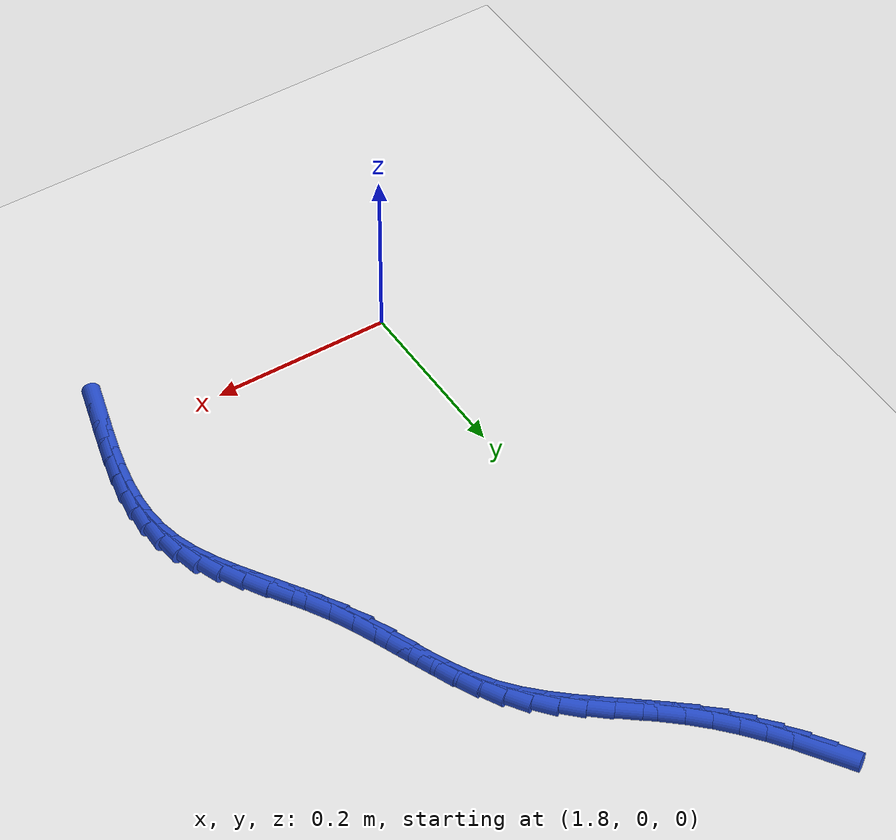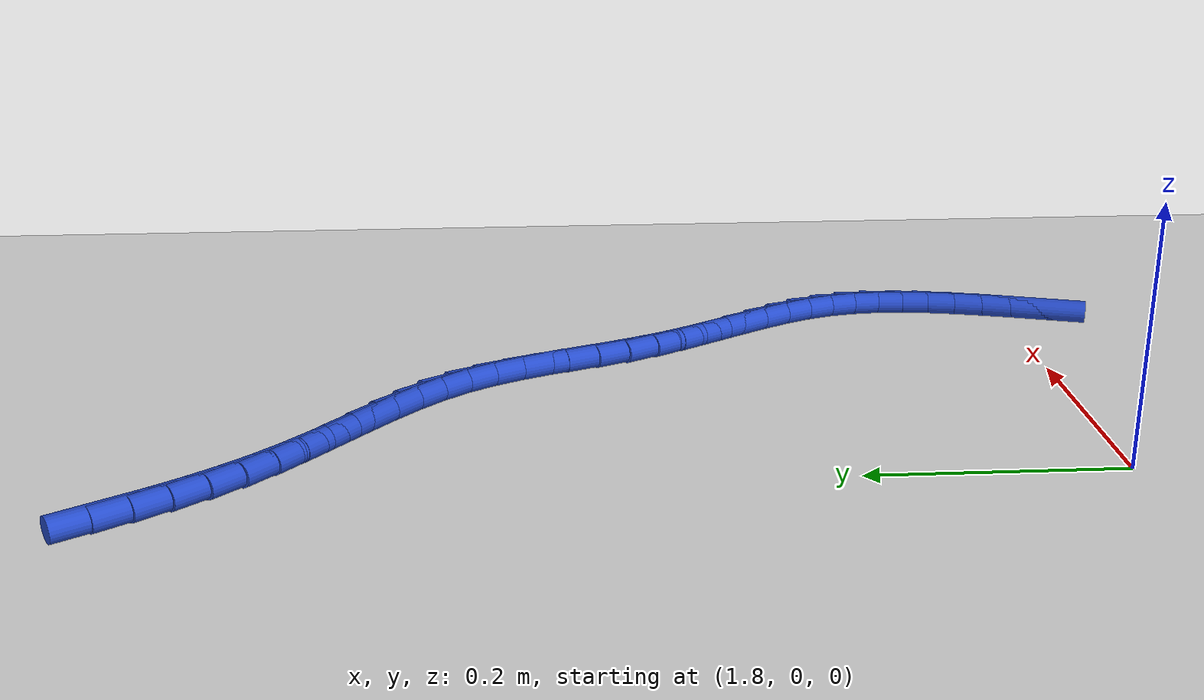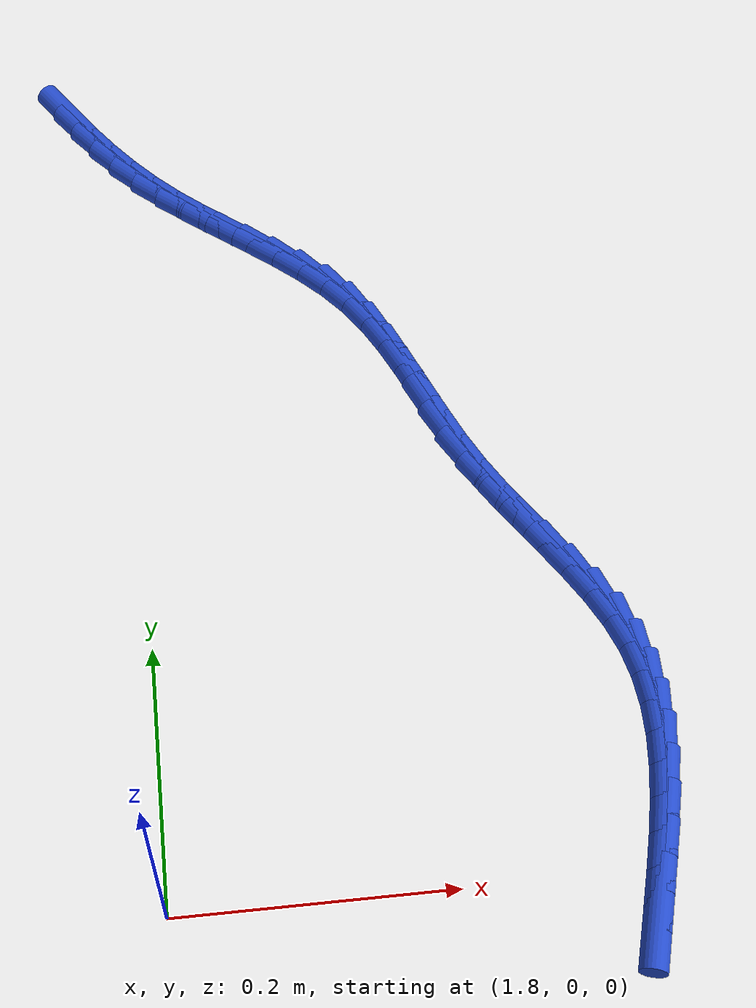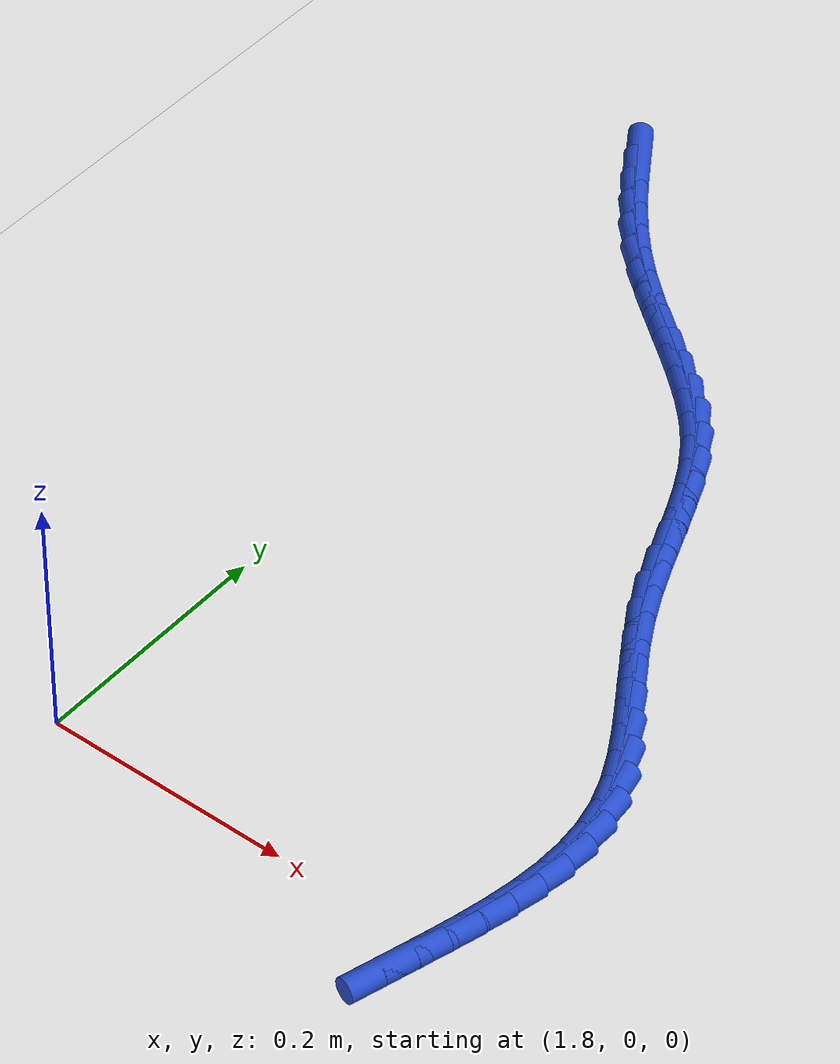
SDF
<sdf version="1.6">
 <world name="default">
  <model name="ground_plane">
   <static>1</static>
   <link name="link">
    <collision name="collision">
     <geometry><plane><normal>0 0 1</normal><size>100 100</size></plane></geometry>
     <surface><friction><ode><mu>100</mu><mu2>50</mu2></ode></friction></surface>
    </collision>
    <visual name="visual">
     <cast_shadows>0</cast_shadows>
     <geometry><plane><normal>0 0 1</normal><size>100 100</size></plane></geometry>
     <material>
      <script><uri>file://media/materials/scripts/gazebo.material</uri><name>Gazebo/WhiteGlow</name></script>
     </material>
    </visual>
   </link>
  </model>
  <model name="line">
   <link name="link_103">
    <pose>1.755227959122589 0.7230557136589938 0.01 0 1.57 -0.9894652515931217</pose>
    <collision name="collision">
     <geometry><cylinder><radius>0.01</radius><length>0.08</length></cylinder></geometry>
    </collision>
    <visual name="visual">
     <material>
      <script><name>Gazebo/Blue</name><uri>file://media/materials/scripts/gazebo.material</uri></script>
     </material>
     <geometry><cylinder><radius>0.01</radius><length>0.08</length></cylinder></geometry>
    </visual>
   </link>
   <link name="link_104">
    <pose>1.7700422547282626 0.7005098079702247 0.01 0 1.57 -0.9454566891592192</pose>
    <collision name="collision">
     <geometry><cylinder><radius>0.01</radius><length>0.08</length></cylinder></geometry>
    </collision>
    <visual name="visual">
     <material>
      <script><name>Gazebo/Blue</name><uri>file://media/materials/scripts/gazebo.material</uri></script>
     </material>
     <geometry><cylinder><radius>0.01</radius><length>0.08</length></cylinder></geometry>
    </visual>
   </link>
   <link name="link_105">
    <pose>1.7858175777164018 0.6786603604137122 0.01 0 1.57 -0.8946418188440194</pose>
    <collision name="collision">
     <geometry><cylinder><radius>0.01</radius><length>0.08</length></cylinder></geometry>
    </collision>
    <visual name="visual">
     <material>
      <script><name>Gazebo/Blue</name><uri>file://media/materials/scripts/gazebo.material</uri></script>
     </material>
     <geometry><cylinder><radius>0.01</radius><length>0.08</length></cylinder></geometry>
    </visual>
   </link>
   <link name="link_106">
    <pose>1.8026693780623755 0.6576565439930375 0.01 0 1.57 -0.8369986534516176</pose>
    <collision name="collision">
     <geometry><cylinder><radius>0.01</radius><length>0.08</length></cylinder></geometry>
    </collision>
    <visual name="visual">
     <material>
      <script><name>Gazebo/Blue</name><uri>file://media/materials/scripts/gazebo.material</uri></script>
     </material>
     <geometry><cylinder><radius>0.01</radius><length>0.08</length></cylinder></geometry>
    </visual>
   </link>
   <link name="link_107">
    <pose>1.8207131057415515 0.6376475317117806 0.01 0 1.57 -0.772832061545393</pose>
    <collision name="collision">
     <geometry><cylinder><radius>0.01</radius><length>0.08</length></cylinder></geometry>
    </collision>
    <visual name="visual">
     <material>
      <script><name>Gazebo/Blue</name><uri>file://media/materials/scripts/gazebo.material</uri></script>
     </material>
     <geometry><cylinder><radius>0.01</radius><length>0.08</length></cylinder></geometry>
    </visual>
   </link>
   <link name="link_108">
    <pose>1.8400610792382524 0.6187798058638003 0.01 0 1.57 -0.7137243002525514</pose>
    <collision name="collision">
     <geometry><cylinder><radius>0.01</radius><length>0.08</length></cylinder></geometry>
    </collision>
    <visual name="visual">
     <material>
      <script><name>Gazebo/Blue</name><uri>file://media/materials/scripts/gazebo.material</uri></script>
     </material>
     <geometry><cylinder><radius>0.01</radius><length>0.08</length></cylinder></geometry>
    </visual>
   </link>
   <link name="link_109">
    <pose>1.8605922287510637 0.6009993116441819 0.01 0 1.57 -0.6782088450111282</pose>
    <collision name="collision">
     <geometry><cylinder><radius>0.01</radius><length>0.08</length></cylinder></geometry>
    </collision>
    <visual name="visual">
     <material>
      <script><name>Gazebo/Blue</name><uri>file://media/materials/scripts/gazebo.material</uri></script>
     </material>
     <geometry><cylinder><radius>0.01</radius><length>0.08</length></cylinder></geometry>
    </visual>
   </link>
   <link name="link_110">
    <pose>1.881794818267939 0.5839163172956617 0.01 0 1.57 -0.6674695165285577</pose>
    <collision name="collision">
     <geometry><cylinder><radius>0.01</radius><length>0.08</length></cylinder></geometry>
    </collision>
    <visual name="visual">
     <material>
      <script><name>Gazebo/Blue</name><uri>file://media/materials/scripts/gazebo.material</uri></script>
     </material>
     <geometry><cylinder><radius>0.01</radius><length>0.08</length></cylinder></geometry>
    </visual>
   </link>
   <link name="link_111">
    <pose>1.9031198836042336 0.5671091030385187 0.01 0 1.57 -0.6815395864330649</pose>
    <collision name="collision">
     <geometry><cylinder><radius>0.01</radius><length>0.08</length></cylinder></geometry>
    </collision>
    <visual name="visual">
     <material>
      <script><name>Gazebo/Blue</name><uri>file://media/materials/scripts/gazebo.material</uri></script>
     </material>
     <geometry><cylinder><radius>0.01</radius><length>0.08</length></cylinder></geometry>
    </visual>
   </link>
   <link name="link_112">
    <pose>1.9240184605753026 0.5501559490930309 0.01 0 1.57 -0.7213284330216496</pose>
    <collision name="collision">
     <geometry><cylinder><radius>0.01</radius><length>0.08</length></cylinder></geometry>
    </collision>
    <visual name="visual">
     <material>
      <script><name>Gazebo/Blue</name><uri>file://media/materials/scripts/gazebo.material</uri></script>
     </material>
     <geometry><cylinder><radius>0.01</radius><length>0.08</length></cylinder></geometry>
    </visual>
   </link>
   <link name="link_113">
    <pose>1.9439415849965014 0.5326351356794764 0.01 0 1.57 -0.7884186986764481</pose>
    <collision name="collision">
     <geometry><cylinder><radius>0.01</radius><length>0.08</length></cylinder></geometry>
    </collision>
    <visual name="visual">
     <material>
      <script><name>Gazebo/Blue</name><uri>file://media/materials/scripts/gazebo.material</uri></script>
     </material>
     <geometry><cylinder><radius>0.01</radius><length>0.08</length></cylinder></geometry>
    </visual>
   </link>
   <link name="link_114">
    <pose>1.9623402926831839 0.514124943018134 0.01 0 1.57 -0.8842828764143401</pose>
    <collision name="collision">
     <geometry><cylinder><radius>0.01</radius><length>0.08</length></cylinder></geometry>
    </collision>
    <visual name="visual">
     <material>
      <script><name>Gazebo/Blue</name><uri>file://media/materials/scripts/gazebo.material</uri></script>
     </material>
     <geometry><cylinder><radius>0.01</radius><length>0.08</length></cylinder></geometry>
    </visual>
   </link>
   <link name="link_115">
    <pose>1.9786656195325691 0.4942036513830985 0.01 0 1.57 -0.9991355627216425</pose>
    <collision name="collision">
     <geometry><cylinder><radius>0.01</radius><length>0.08</length></cylinder></geometry>
    </collision>
    <visual name="visual">
     <material>
      <script><name>Gazebo/Blue</name><uri>file://media/materials/scripts/gazebo.material</uri></script>
     </material>
     <geometry><cylinder><radius>0.01</radius><length>0.08</length></cylinder></geometry>
    </visual>
   </link>
   <link name="link_116">
    <pose>1.9925736347848768 0.47258432930055866 0.01 0 1.57 -1.0930243860426903</pose>
    <collision name="collision">
     <geometry><cylinder><radius>0.01</radius><length>0.08</length></cylinder></geometry>
    </collision>
    <visual name="visual">
     <material>
      <script><name>Gazebo/Blue</name><uri>file://media/materials/scripts/gazebo.material</uri></script>
     </material>
     <geometry><cylinder><radius>0.01</radius><length>0.08</length></cylinder></geometry>
    </visual>
   </link>
   <link name="link_117">
    <pose>2.0045224921727907 0.44950733303043483 0.01 0 1.57 -1.155901641489208</pose>
    <collision name="collision">
     <geometry><cylinder><radius>0.01</radius><length>0.08</length></cylinder></geometry>
    </collision>
    <visual name="visual">
     <material>
      <script><name>Gazebo/Blue</name><uri>file://media/materials/scripts/gazebo.material</uri></script>
     </material>
     <geometry><cylinder><radius>0.01</radius><length>0.08</length></cylinder></geometry>
    </visual>
   </link>
   <link name="link_118">
    <pose>2.015166453200929 0.42534193944338533 0.01 0 1.57 -1.1889215974989893</pose>
    <collision name="collision">
     <geometry><cylinder><radius>0.01</radius><length>0.08</length></cylinder></geometry>
    </collision>
    <visual name="visual">
     <material>
      <script><name>Gazebo/Blue</name><uri>file://media/materials/scripts/gazebo.material</uri></script>
     </material>
     <geometry><cylinder><radius>0.01</radius><length>0.08</length></cylinder></geometry>
    </visual>
   </link>
   <link name="link_119">
    <pose>2.025159779373912 0.40045742541006707 0.01 0 1.57 -1.1936009135959853</pose>
    <collision name="collision">
     <geometry><cylinder><radius>0.01</radius><length>0.08</length></cylinder></geometry>
    </collision>
    <visual name="visual">
     <material>
      <script><name>Gazebo/Blue</name><uri>file://media/materials/scripts/gazebo.material</uri></script>
     </material>
     <geometry><cylinder><radius>0.01</radius><length>0.08</length></cylinder></geometry>
    </visual>
   </link>
   <link name="link_120">
    <pose>2.0351567321963584 0.3752230678011374 0.01 0 1.57 -1.1709934361395855</pose>
    <collision name="collision">
     <geometry><cylinder><radius>0.01</radius><length>0.08</length></cylinder></geometry>
    </collision>
    <visual name="visual">
     <material>
      <script><name>Gazebo/Blue</name><uri>file://media/materials/scripts/gazebo.material</uri></script>
     </material>
     <geometry><cylinder><radius>0.01</radius><length>0.08</length></cylinder></geometry>
    </visual>
   </link>
   <link name="link_121">
    <pose>2.0458115731728865 0.3500081434872537 0.01 0 1.57 -1.1216391010639046</pose>
    <collision name="collision">
     <geometry><cylinder><radius>0.01</radius><length>0.08</length></cylinder></geometry>
    </collision>
    <visual name="visual">
     <material>
      <script><name>Gazebo/Blue</name><uri>file://media/materials/scripts/gazebo.material</uri></script>
     </material>
     <geometry><cylinder><radius>0.01</radius><length>0.08</length></cylinder></geometry>
    </visual>
   </link>
   <link name="link_122">
    <pose>2.0577782592713603 0.32518182106942084 0.01 0 1.57 -1.0582640168770479</pose>
    <collision name="collision">
     <geometry><cylinder><radius>0.01</radius><length>0.08</length></cylinder></geometry>
    </collision>
    <visual name="visual">
     <material>
      <script><name>Gazebo/Blue</name><uri>file://media/materials/scripts/gazebo.material</uri></script>
     </material>
     <geometry><cylinder><radius>0.01</radius><length>0.08</length></cylinder></geometry>
    </visual>
   </link>
   <link name="link_123">
    <pose>2.0713862594003136 0.30099790636030116 0.01 0 1.57 -1.0160397794293594</pose>
    <collision name="collision">
     <geometry><cylinder><radius>0.01</radius><length>0.08</length></cylinder></geometry>
    </collision>
    <visual name="visual">
     <material>
      <script><name>Gazebo/Blue</name><uri>file://media/materials/scripts/gazebo.material</uri></script>
     </material>
     <geometry><cylinder><radius>0.01</radius><length>0.08</length></cylinder></geometry>
    </visual>
   </link>
   <link name="link_124">
    <pose>2.0860241980985426 0.2773757138815202 0.01 0 1.57 -1.0003209685814165</pose>
    <collision name="collision">
     <geometry><cylinder><radius>0.01</radius><length>0.08</length></cylinder></geometry>
    </collision>
    <visual name="visual">
     <material>
      <script><name>Gazebo/Blue</name><uri>file://media/materials/scripts/gazebo.material</uri></script>
     </material>
     <geometry><cylinder><radius>0.01</radius><length>0.08</length></cylinder></geometry>
    </visual>
   </link>
   <link name="link_125">
    <pose>2.1009111523431527 0.25417428019096544 0.01 0 1.57 -1.011287021764824</pose>
    <collision name="collision">
     <geometry><cylinder><radius>0.01</radius><length>0.08</length></cylinder></geometry>
    </collision>
    <visual name="visual">
     <material>
      <script><name>Gazebo/Blue</name><uri>file://media/materials/scripts/gazebo.material</uri></script>
     </material>
     <geometry><cylinder><radius>0.01</radius><length>0.08</length></cylinder></geometry>
    </visual>
   </link>
   <link name="link_126">
    <pose>2.1152661991112485 0.2312526418465245 0.01 0 1.57 -1.0508739817782078</pose>
    <collision name="collision">
     <geometry><cylinder><radius>0.01</radius><length>0.08</length></cylinder></geometry>
    </collision>
    <visual name="visual">
     <material>
      <script><name>Gazebo/Blue</name><uri>file://media/materials/scripts/gazebo.material</uri></script>
     </material>
     <geometry><cylinder><radius>0.01</radius><length>0.08</length></cylinder></geometry>
    </visual>
   </link>
   <link name="link_127">
    <pose>2.1283084153799336 0.2084698354060856 0.01 0 1.57 -1.1228593604623336</pose>
    <collision name="collision">
     <geometry><cylinder><radius>0.01</radius><length>0.08</length></cylinder></geometry>
    </collision>
    <visual name="visual">
     <material>
      <script><name>Gazebo/Blue</name><uri>file://media/materials/scripts/gazebo.material</uri></script>
     </material>
     <geometry><cylinder><radius>0.01</radius><length>0.08</length></cylinder></geometry>
    </visual>
   </link>
   <link name="link_128">
    <pose>2.1392568781263117 0.18568489742753616 0.01 0 1.57 -1.2320339565791103</pose>
    <collision name="collision">
     <geometry><cylinder><radius>0.01</radius><length>0.08</length></cylinder></geometry>
    </collision>
    <visual name="visual">
     <material>
      <script><name>Gazebo/Blue</name><uri>file://media/materials/scripts/gazebo.material</uri></script>
     </material>
     <geometry><cylinder><radius>0.01</radius><length>0.08</length></cylinder></geometry>
    </visual>
   </link>
   <link name="link_129">
    <pose>2.1473353102871786 0.1627572772502709 0.01 0 1.57 -1.3653585126769308</pose>
    <collision name="collision">
     <geometry><cylinder><radius>0.01</radius><length>0.08</length></cylinder></geometry>
    </collision>
    <visual name="visual">
     <material>
      <script><name>Gazebo/Blue</name><uri>file://media/materials/scripts/gazebo.material</uri></script>
     </material>
     <geometry><cylinder><radius>0.01</radius><length>0.08</length></cylinder></geometry>
    </visual>
   </link>
   <link name="link_130">
    <pose>2.1521645794756963 0.13958170949141863 0.01 0 1.57 -1.4901582413546028</pose>
    <collision name="collision">
     <geometry><cylinder><radius>0.01</radius><length>0.08</length></cylinder></geometry>
    </collision>
    <visual name="visual">
     <material>
      <script><name>Gazebo/Blue</name><uri>file://media/materials/scripts/gazebo.material</uri></script>
     </material>
     <geometry><cylinder><radius>0.01</radius><length>0.08</length></cylinder></geometry>
    </visual>
   </link>
   <link name="link_131">
    <pose>2.154061024938682 0.1161147196247151 0.01 0 1.57 1.5434959786042945</pose>
    <collision name="collision">
     <geometry><cylinder><radius>0.01</radius><length>0.08</length></cylinder></geometry>
    </collision>
    <visual name="visual">
     <material>
      <script><name>Gazebo/Blue</name><uri>file://media/materials/scripts/gazebo.material</uri></script>
     </material>
     <geometry><cylinder><radius>0.01</radius><length>0.08</length></cylinder></geometry>
    </visual>
   </link>
   <link name="link_132">
    <pose>2.1534112341014873 0.09231907449294338 0.01 0 1.57 1.4550387806455694</pose>
    <collision name="collision">
     <geometry><cylinder><radius>0.01</radius><length>0.08</length></cylinder></geometry>
    </collision>
    <visual name="visual">
     <material>
      <script><name>Gazebo/Blue</name><uri>file://media/materials/scripts/gazebo.material</uri></script>
     </material>
     <geometry><cylinder><radius>0.01</radius><length>0.08</length></cylinder></geometry>
    </visual>
   </link>
   <link name="link_133">
    <pose>2.1506017943894644 0.06815754093888533 0.01 0 1.57 1.3863676572112864</pose>
    <collision name="collision">
     <geometry><cylinder><radius>0.01</radius><length>0.08</length></cylinder></geometry>
    </collision>
    <visual name="visual">
     <material>
      <script><name>Gazebo/Blue</name><uri>file://media/materials/scripts/gazebo.material</uri></script>
     </material>
     <geometry><cylinder><radius>0.01</radius><length>0.08</length></cylinder></geometry>
    </visual>
   </link>
   <link name="link_134">
    <pose>2.146019293227966 0.043592885805323216 0.01 0 1.57 1.336470337634146</pose>
    <collision name="collision">
     <geometry><cylinder><radius>0.01</radius><length>0.08</length></cylinder></geometry>
    </collision>
    <visual name="visual">
     <material>
      <script><name>Gazebo/Blue</name><uri>file://media/materials/scripts/gazebo.material</uri></script>
     </material>
     <geometry><cylinder><radius>0.01</radius><length>0.08</length></cylinder></geometry>
    </visual>
   </link>
   <link name="link_135">
    <pose>2.1400503180423422 0.018587875935038863 0.01 0 1.57 1.303848143022877</pose>
    <collision name="collision">
     <geometry><cylinder><radius>0.01</radius><length>0.08</length></cylinder></geometry>
    </collision>
    <visual name="visual">
     <material>
      <script><name>Gazebo/Blue</name><uri>file://media/materials/scripts/gazebo.material</uri></script>
     </material>
     <geometry><cylinder><radius>0.01</radius><length>0.08</length></cylinder></geometry>
    </visual>
   </link>
   <link name="link_136">
    <pose>2.133081456257947 -0.00689472182918467 0.01 0 1.57 1.2870170898525592</pose>
    <collision name="collision">
     <geometry><cylinder><radius>0.01</radius><length>0.08</length></cylinder></geometry>
    </collision>
    <visual name="visual">
     <material>
      <script><name>Gazebo/Blue</name><uri>file://media/materials/scripts/gazebo.material</uri></script>
     </material>
     <geometry><cylinder><radius>0.01</radius><length>0.08</length></cylinder></geometry>
    </visual>
   </link>
   <link name="link_137">
    <pose>2.1254992953001306 -0.032892140644565485 0.01 0 1.57 1.284737807213478</pose>
    <collision name="collision">
     <geometry><cylinder><radius>0.01</radius><length>0.08</length></cylinder></geometry>
    </collision>
    <visual name="visual">
     <material>
      <script><name>Gazebo/Blue</name><uri>file://media/materials/scripts/gazebo.material</uri></script>
     </material>
     <geometry><cylinder><radius>0.01</radius><length>0.08</length></cylinder></geometry>
    </visual>
   </link>
  </model>
 </world>
</sdf>
